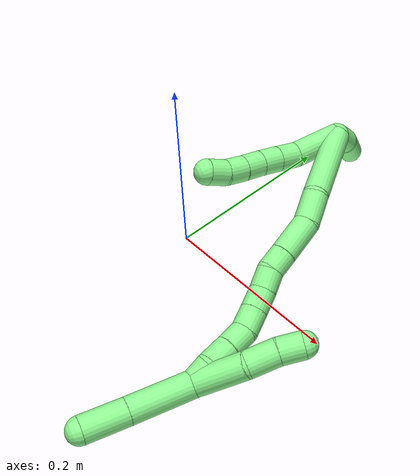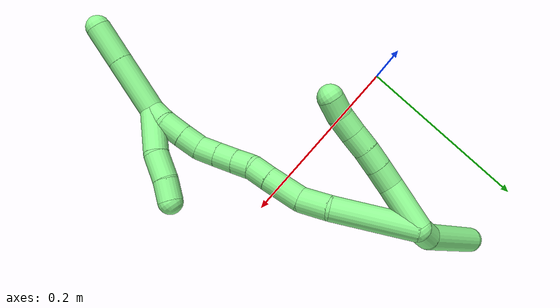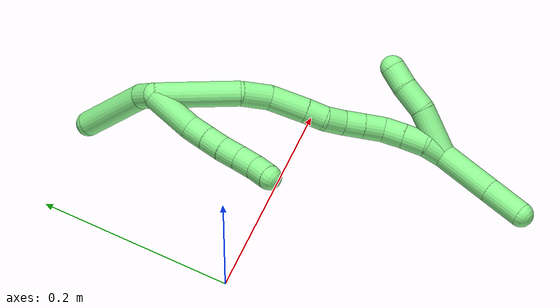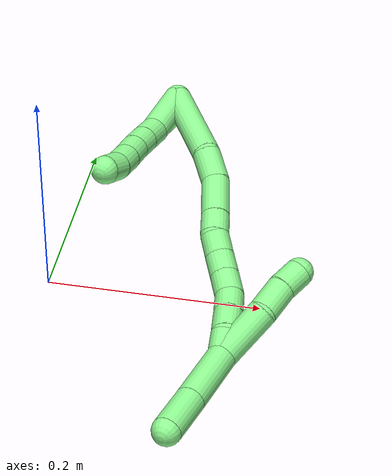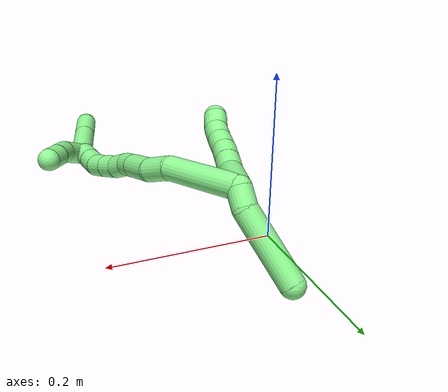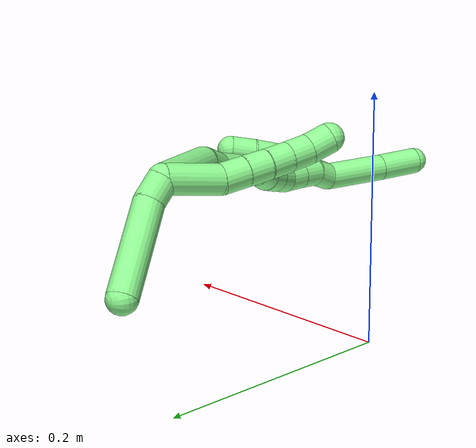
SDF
<sdf version="1.7">
 <world name="default">
  <model name="13">
   <static>0</static>
   <link name="13">
    <collision name="collision-cylinder-e_1_2_8">
     <pose>-0.003605 -0.001942 0.023631 0.081981 -0.150899 -0.006201</pose>
     <geometry><cylinder><radius>0.0125</radius><length>0.047967</length></cylinder></geometry>
     <surface>
      <friction><ode><mu>1.16</mu><mu2>1.16</mu2><slip1>0</slip1><slip2>0</slip2></ode></friction>
      <contact><ode><kp>1e+06</kp><kd>1</kd><max_vel>0</max_vel><min_depth>0.001</min_depth></ode></contact>
     </surface>
    </collision>
    <visual name="visual-cylinder-e_1_2_8">
     <pose>-0.003605 -0.001942 0.023631 0.081981 -0.150899 -0.006201</pose>
     <geometry><cylinder><radius>0.0125</radius><length>0.047967</length></cylinder></geometry>
     <material><ambient>0.564706 0.984314 0.572549 1</ambient></material>
    </visual>
    <collision name="collision-cylinder-e_2_8_9">
     <pose>-0.006032 -0.003118 0.058167 -0.070072 0.107391 -0.003768</pose>
     <geometry><cylinder><radius>0.0125</radius><length>0.021989</length></cylinder></geometry>
     <surface>
      <friction><ode><mu>1.16</mu><mu2>1.16</mu2><slip1>0</slip1><slip2>0</slip2></ode></friction>
      <contact><ode><kp>1e+06</kp><kd>1</kd><max_vel>0</max_vel><min_depth>0.001</min_depth></ode></contact>
     </surface>
    </collision>
    <visual name="visual-cylinder-e_2_8_9">
     <pose>-0.006032 -0.003118 0.058167 -0.070072 0.107391 -0.003768</pose>
     <geometry><cylinder><radius>0.0125</radius><length>0.021989</length></cylinder></geometry>
     <material><ambient>0.564706 0.984314 0.572549 1</ambient></material>
    </visual>
    <collision name="collision-cylinder-e_3_9_10">
     <pose>-0.003793 -0.001836 0.079007 -0.051925 0.106208 -0.002761</pose>
     <geometry><cylinder><radius>0.0125</radius><length>0.020011</length></cylinder></geometry>
     <surface>
      <friction><ode><mu>1.16</mu><mu2>1.16</mu2><slip1>0</slip1><slip2>0</slip2></ode></friction>
      <contact><ode><kp>1e+06</kp><kd>1</kd><max_vel>0</max_vel><min_depth>0.001</min_depth></ode></contact>
     </surface>
    </collision>
    <visual name="visual-cylinder-e_3_9_10">
     <pose>-0.003793 -0.001836 0.079007 -0.051925 0.106208 -0.002761</pose>
     <geometry><cylinder><radius>0.0125</radius><length>0.020011</length></cylinder></geometry>
     <material><ambient>0.564706 0.984314 0.572549 1</ambient></material>
    </visual>
    <collision name="collision-cylinder-e_4_10_11">
     <pose>-0.001238 -0.001308 0.098841 -0.001214 0.149859 -9.1e-05</pose>
     <geometry><cylinder><radius>0.0125</radius><length>0.02002</length></cylinder></geometry>
     <surface>
      <friction><ode><mu>1.16</mu><mu2>1.16</mu2><slip1>0</slip1><slip2>0</slip2></ode></friction>
      <contact><ode><kp>1e+06</kp><kd>1</kd><max_vel>0</max_vel><min_depth>0.001</min_depth></ode></contact>
     </surface>
    </collision>
    <visual name="visual-cylinder-e_4_10_11">
     <pose>-0.001238 -0.001308 0.098841 -0.001214 0.149859 -9.1e-05</pose>
     <geometry><cylinder><radius>0.0125</radius><length>0.02002</length></cylinder></geometry>
     <material><ambient>0.564706 0.984314 0.572549 1</ambient></material>
    </visual>
    <collision name="collision-cylinder-e_5_11_12">
     <pose>0.001839 -0.000788 0.118602 -0.051485 0.158876 -0.004099</pose>
     <geometry><cylinder><radius>0.0125</radius><length>0.020003</length></cylinder></geometry>
     <surface>
      <friction><ode><mu>1.16</mu><mu2>1.16</mu2><slip1>0</slip1><slip2>0</slip2></ode></friction>
      <contact><ode><kp>1e+06</kp><kd>1</kd><max_vel>0</max_vel><min_depth>0.001</min_depth></ode></contact>
     </surface>
    </collision>
    <visual name="visual-cylinder-e_5_11_12">
     <pose>0.001839 -0.000788 0.118602 -0.051485 0.158876 -0.004099</pose>
     <geometry><cylinder><radius>0.0125</radius><length>0.020003</length></cylinder></geometry>
     <material><ambient>0.564706 0.984314 0.572549 1</ambient></material>
    </visual>
    <collision name="collision-cylinder-e_6_12_6">
     <pose>0.005625 0.002423 0.137841 -0.280583 0.222062 -0.031486</pose>
     <geometry><cylinder><radius>0.0125</radius><length>0.020009</length></cylinder></geometry>
     <surface>
      <friction><ode><mu>1.16</mu><mu2>1.16</mu2><slip1>0</slip1><slip2>0</slip2></ode></friction>
      <contact><ode><kp>1e+06</kp><kd>1</kd><max_vel>0</max_vel><min_depth>0.001</min_depth></ode></contact>
     </surface>
    </collision>
    <visual name="visual-cylinder-e_6_12_6">
     <pose>0.005625 0.002423 0.137841 -0.280583 0.222062 -0.031486</pose>
     <geometry><cylinder><radius>0.0125</radius><length>0.020009</length></cylinder></geometry>
     <material><ambient>0.564706 0.984314 0.572549 1</ambient></material>
    </visual>
    <collision name="collision-cylinder-e_1_2_13">
     <pose>-0.007009 -0.002719 -0.007126 2.77708 -0.74323 -2.25812</pose>
     <geometry><cylinder><radius>0.0125</radius><length>0.020717</length></cylinder></geometry>
     <surface>
      <friction><ode><mu>1.16</mu><mu2>1.16</mu2><slip1>0</slip1><slip2>0</slip2></ode></friction>
      <contact><ode><kp>1e+06</kp><kd>1</kd><max_vel>0</max_vel><min_depth>0.001</min_depth></ode></contact>
     </surface>
    </collision>
    <visual name="visual-cylinder-e_1_2_13">
     <pose>-0.007009 -0.002719 -0.007126 2.77708 -0.74323 -2.25812</pose>
     <geometry><cylinder><radius>0.0125</radius><length>0.020717</length></cylinder></geometry>
     <material><ambient>0.564706 0.984314 0.572549 1</ambient></material>
    </visual>
    <collision name="collision-cylinder-e_2_13_5">
     <pose>-0.047661 -0.006454 -0.035194 3.09309 -1.01347 -3.05426</pose>
     <geometry><cylinder><radius>0.0125</radius><length>0.079283</length></cylinder></geometry>
     <surface>
      <friction><ode><mu>1.16</mu><mu2>1.16</mu2><slip1>0</slip1><slip2>0</slip2></ode></friction>
      <contact><ode><kp>1e+06</kp><kd>1</kd><max_vel>0</max_vel><min_depth>0.001</min_depth></ode></contact>
     </surface>
    </collision>
    <visual name="visual-cylinder-e_2_13_5">
     <pose>-0.047661 -0.006454 -0.035194 3.09309 -1.01347 -3.05426</pose>
     <geometry><cylinder><radius>0.0125</radius><length>0.079283</length></cylinder></geometry>
     <material><ambient>0.564706 0.984314 0.572549 1</ambient></material>
    </visual>
    <collision name="collision-cylinder-e_1_2_14">
     <pose>0.013483 -0.02581 0.030833 0.696944 0.323529 0.118435</pose>
     <geometry><cylinder><radius>0.0125</radius><length>0.084821</length></cylinder></geometry>
     <surface>
      <friction><ode><mu>1.16</mu><mu2>1.16</mu2><slip1>0</slip1><slip2>0</slip2></ode></friction>
      <contact><ode><kp>1e+06</kp><kd>1</kd><max_vel>0</max_vel><min_depth>0.001</min_depth></ode></contact>
     </surface>
    </collision>
    <visual name="visual-cylinder-e_1_2_14">
     <pose>0.013483 -0.02581 0.030833 0.696944 0.323529 0.118435</pose>
     <geometry><cylinder><radius>0.0125</radius><length>0.084821</length></cylinder></geometry>
     <material><ambient>0.564706 0.984314 0.572549 1</ambient></material>
    </visual>
    <collision name="collision-cylinder-e_2_14_15">
     <pose>0.027655 -0.062621 0.072092 0.812245 0.045428 0.019538</pose>
     <geometry><cylinder><radius>0.0125</radius><length>0.030344</length></cylinder></geometry>
     <surface>
      <friction><ode><mu>1.16</mu><mu2>1.16</mu2><slip1>0</slip1><slip2>0</slip2></ode></friction>
      <contact><ode><kp>1e+06</kp><kd>1</kd><max_vel>0</max_vel><min_depth>0.001</min_depth></ode></contact>
     </surface>
    </collision>
    <visual name="visual-cylinder-e_2_14_15">
     <pose>0.027655 -0.062621 0.072092 0.812245 0.045428 0.019538</pose>
     <geometry><cylinder><radius>0.0125</radius><length>0.030344</length></cylinder></geometry>
     <material><ambient>0.564706 0.984314 0.572549 1</ambient></material>
    </visual>
    <collision name="collision-cylinder-e_3_15_16">
     <pose>0.028291 -0.082903 0.099097 0.510366 -0.002751 -0.000718</pose>
     <geometry><cylinder><radius>0.0125</radius><length>0.038001</length></cylinder></geometry>
     <surface>
      <friction><ode><mu>1.16</mu><mu2>1.16</mu2><slip1>0</slip1><slip2>0</slip2></ode></friction>
      <contact><ode><kp>1e+06</kp><kd>1</kd><max_vel>0</max_vel><min_depth>0.001</min_depth></ode></contact>
     </surface>
    </collision>
    <visual name="visual-cylinder-e_3_15_16">
     <pose>0.028291 -0.082903 0.099097 0.510366 -0.002751 -0.000718</pose>
     <geometry><cylinder><radius>0.0125</radius><length>0.038001</length></cylinder></geometry>
     <material><ambient>0.564706 0.984314 0.572549 1</ambient></material>
    </visual>
    <collision name="collision-cylinder-e_4_16_17">
     <pose>0.027773 -0.097045 0.124515 0.502727 -0.046205 -0.011867</pose>
     <geometry><cylinder><radius>0.0125</radius><length>0.020195</length></cylinder></geometry>
     <surface>
      <friction><ode><mu>1.16</mu><mu2>1.16</mu2><slip1>0</slip1><slip2>0</slip2></ode></friction>
      <contact><ode><kp>1e+06</kp><kd>1</kd><max_vel>0</max_vel><min_depth>0.001</min_depth></ode></contact>
     </surface>
    </collision>
    <visual name="visual-cylinder-e_4_16_17">
     <pose>0.027773 -0.097045 0.124515 0.502727 -0.046205 -0.011867</pose>
     <geometry><cylinder><radius>0.0125</radius><length>0.020195</length></cylinder></geometry>
     <material><ambient>0.564706 0.984314 0.572549 1</ambient></material>
    </visual>
    <collision name="collision-cylinder-e_5_17_18">
     <pose>0.026754 -0.109224 0.140279 0.812999 -0.05477 -0.023582</pose>
     <geometry><cylinder><radius>0.0125</radius><length>0.020183</length></cylinder></geometry>
     <surface>
      <friction><ode><mu>1.16</mu><mu2>1.16</mu2><slip1>0</slip1><slip2>0</slip2></ode></friction>
      <contact><ode><kp>1e+06</kp><kd>1</kd><max_vel>0</max_vel><min_depth>0.001</min_depth></ode></contact>
     </surface>
    </collision>
    <visual name="visual-cylinder-e_5_17_18">
     <pose>0.026754 -0.109224 0.140279 0.812999 -0.05477 -0.023582</pose>
     <geometry><cylinder><radius>0.0125</radius><length>0.020183</length></cylinder></geometry>
     <material><ambient>0.564706 0.984314 0.572549 1</ambient></material>
    </visual>
    <collision name="collision-cylinder-e_6_18_19">
     <pose>0.027101 -0.123228 0.155067 0.704678 0.086915 0.031974</pose>
     <geometry><cylinder><radius>0.0125</radius><length>0.020719</length></cylinder></geometry>
     <surface>
      <friction><ode><mu>1.16</mu><mu2>1.16</mu2><slip1>0</slip1><slip2>0</slip2></ode></friction>
      <contact><ode><kp>1e+06</kp><kd>1</kd><max_vel>0</max_vel><min_depth>0.001</min_depth></ode></contact>
     </surface>
    </collision>
    <visual name="visual-cylinder-e_6_18_19">
     <pose>0.027101 -0.123228 0.155067 0.704678 0.086915 0.031974</pose>
     <geometry><cylinder><radius>0.0125</radius><length>0.020719</length></cylinder></geometry>
     <material><ambient>0.564706 0.984314 0.572549 1</ambient></material>
    </visual>
    <collision name="collision-cylinder-e_7_19_20">
     <pose>0.028999 -0.136566 0.171065 0.685458 0.094738 0.033826</pose>
     <geometry><cylinder><radius>0.0125</radius><length>0.021114</length></cylinder></geometry>
     <surface>
      <friction><ode><mu>1.16</mu><mu2>1.16</mu2><slip1>0</slip1><slip2>0</slip2></ode></friction>
      <contact><ode><kp>1e+06</kp><kd>1</kd><max_vel>0</max_vel><min_depth>0.001</min_depth></ode></contact>
     </surface>
    </collision>
    <visual name="visual-cylinder-e_7_19_20">
     <pose>0.028999 -0.136566 0.171065 0.685458 0.094738 0.033826</pose>
     <geometry><cylinder><radius>0.0125</radius><length>0.021114</length></cylinder></geometry>
     <material><ambient>0.564706 0.984314 0.572549 1</ambient></material>
    </visual>
    <collision name="collision-cylinder-e_8_20_21">
     <pose>0.031543 -0.1468 0.189215 0.343425 0.144296 0.025066</pose>
     <geometry><cylinder><radius>0.0125</radius><length>0.021493</length></cylinder></geometry>
     <surface>
      <friction><ode><mu>1.16</mu><mu2>1.16</mu2><slip1>0</slip1><slip2>0</slip2></ode></friction>
      <contact><ode><kp>1e+06</kp><kd>1</kd><max_vel>0</max_vel><min_depth>0.001</min_depth></ode></contact>
     </surface>
    </collision>
    <visual name="visual-cylinder-e_8_20_21">
     <pose>0.031543 -0.1468 0.189215 0.343425 0.144296 0.025066</pose>
     <geometry><cylinder><radius>0.0125</radius><length>0.021493</length></cylinder></geometry>
     <material><ambient>0.564706 0.984314 0.572549 1</ambient></material>
    </visual>
    <collision name="collision-cylinder-e_9_21_22">
     <pose>0.034368 -0.154092 0.21006 0.330095 0.111322 0.018561</pose>
     <geometry><cylinder><radius>0.0125</radius><length>0.023041</length></cylinder></geometry>
     <surface>
      <friction><ode><mu>1.16</mu><mu2>1.16</mu2><slip1>0</slip1><slip2>0</slip2></ode></friction>
      <contact><ode><kp>1e+06</kp><kd>1</kd><max_vel>0</max_vel><min_depth>0.001</min_depth></ode></contact>
     </surface>
    </collision>
    <visual name="visual-cylinder-e_9_21_22">
     <pose>0.034368 -0.154092 0.21006 0.330095 0.111322 0.018561</pose>
     <geometry><cylinder><radius>0.0125</radius><length>0.023041</length></cylinder></geometry>
     <material><ambient>0.564706 0.984314 0.572549 1</ambient></material>
    </visual>
    <collision name="collision-cylinder-e_10_22_1">
     <pose>0.033714 -0.162242 0.229692 0.467122 -0.193705 -0.046219</pose>
     <geometry><cylinder><radius>0.0125</radius><length>0.02009</length></cylinder></geometry>
     <surface>
      <friction><ode><mu>1.16</mu><mu2>1.16</mu2><slip1>0</slip1><slip2>0</slip2></ode></friction>
      <contact><ode><kp>1e+06</kp><kd>1</kd><max_vel>0</max_vel><min_depth>0.001</min_depth></ode></contact>
     </surface>
    </collision>
    <visual name="visual-cylinder-e_10_22_1">
     <pose>0.033714 -0.162242 0.229692 0.467122 -0.193705 -0.046219</pose>
     <geometry><cylinder><radius>0.0125</radius><length>0.02009</length></cylinder></geometry>
     <material><ambient>0.564706 0.984314 0.572549 1</ambient></material>
    </visual>
    <collision name="collision-cylinder-e_1_1_23">
     <pose>0.04591 -0.167296 0.218204 3.11125 0.608108 3.04497</pose>
     <geometry><cylinder><radius>0.0125</radius><length>0.049464</length></cylinder></geometry>
     <surface>
      <friction><ode><mu>1.16</mu><mu2>1.16</mu2><slip1>0</slip1><slip2>0</slip2></ode></friction>
      <contact><ode><kp>1e+06</kp><kd>1</kd><max_vel>0</max_vel><min_depth>0.001</min_depth></ode></contact>
     </surface>
    </collision>
    <visual name="visual-cylinder-e_1_1_23">
     <pose>0.04591 -0.167296 0.218204 3.11125 0.608108 3.04497</pose>
     <geometry><cylinder><radius>0.0125</radius><length>0.049464</length></cylinder></geometry>
     <material><ambient>0.564706 0.984314 0.572549 1</ambient></material>
    </visual>
    <collision name="collision-cylinder-e_2_23_24">
     <pose>0.064829 -0.167687 0.184586 -3.12469 0.344874 -3.0446</pose>
     <geometry><cylinder><radius>0.0125</radius><length>0.02833</length></cylinder></geometry>
     <surface>
      <friction><ode><mu>1.16</mu><mu2>1.16</mu2><slip1>0</slip1><slip2>0</slip2></ode></friction>
      <contact><ode><kp>1e+06</kp><kd>1</kd><max_vel>0</max_vel><min_depth>0.001</min_depth></ode></contact>
     </surface>
    </collision>
    <visual name="visual-cylinder-e_2_23_24">
     <pose>0.064829 -0.167687 0.184586 -3.12469 0.344874 -3.0446</pose>
     <geometry><cylinder><radius>0.0125</radius><length>0.02833</length></cylinder></geometry>
     <material><ambient>0.564706 0.984314 0.572549 1</ambient></material>
    </visual>
    <collision name="collision-cylinder-e_3_24_4">
     <pose>0.073599 -0.168934 0.160997 2.99904 0.366712 2.40653</pose>
     <geometry><cylinder><radius>0.0125</radius><length>0.022206</length></cylinder></geometry>
     <surface>
      <friction><ode><mu>1.16</mu><mu2>1.16</mu2><slip1>0</slip1><slip2>0</slip2></ode></friction>
      <contact><ode><kp>1e+06</kp><kd>1</kd><max_vel>0</max_vel><min_depth>0.001</min_depth></ode></contact>
     </surface>
    </collision>
    <visual name="visual-cylinder-e_3_24_4">
     <pose>0.073599 -0.168934 0.160997 2.99904 0.366712 2.40653</pose>
     <geometry><cylinder><radius>0.0125</radius><length>0.022206</length></cylinder></geometry>
     <material><ambient>0.564706 0.984314 0.572549 1</ambient></material>
    </visual>
    <collision name="collision-cylinder-e_1_1_25">
     <pose>0.031208 -0.166221 0.268386 -0.015381 -0.019159 0.000147</pose>
     <geometry><cylinder><radius>0.0125</radius><length>0.059804</length></cylinder></geometry>
     <surface>
      <friction><ode><mu>1.16</mu><mu2>1.16</mu2><slip1>0</slip1><slip2>0</slip2></ode></friction>
      <contact><ode><kp>1e+06</kp><kd>1</kd><max_vel>0</max_vel><min_depth>0.001</min_depth></ode></contact>
     </surface>
    </collision>
    <visual name="visual-cylinder-e_1_1_25">
     <pose>0.031208 -0.166221 0.268386 -0.015381 -0.019159 0.000147</pose>
     <geometry><cylinder><radius>0.0125</radius><length>0.059804</length></cylinder></geometry>
     <material><ambient>0.564706 0.984314 0.572549 1</ambient></material>
    </visual>
    <collision name="collision-cylinder-e_2_25_3">
     <pose>0.030573 -0.165098 0.318366 -0.032985 -0.00305 5e-05</pose>
     <geometry><cylinder><radius>0.0125</radius><length>0.040196</length></cylinder></geometry>
     <surface>
      <friction><ode><mu>1.16</mu><mu2>1.16</mu2><slip1>0</slip1><slip2>0</slip2></ode></friction>
      <contact><ode><kp>1e+06</kp><kd>1</kd><max_vel>0</max_vel><min_depth>0.001</min_depth></ode></contact>
     </surface>
    </collision>
    <visual name="visual-cylinder-e_2_25_3">
     <pose>0.030573 -0.165098 0.318366 -0.032985 -0.00305 5e-05</pose>
     <geometry><cylinder><radius>0.0125</radius><length>0.040196</length></cylinder></geometry>
     <material><ambient>0.564706 0.984314 0.572549 1</ambient></material>
    </visual>
    <collision name="collision-sphere-3">
     <pose>0.030512 -0.164435 0.338453 0 -0 0</pose>
     <geometry><sphere><radius>0.0125</radius></sphere></geometry>
     <surface>
      <friction><ode><mu>1.16</mu><mu2>1.16</mu2><slip1>0</slip1><slip2>0</slip2></ode></friction>
      <contact><ode><kp>1e+06</kp><kd>1</kd><max_vel>0</max_vel><min_depth>0.001</min_depth></ode></contact>
     </surface>
    </collision>
    <visual name="visual-sphere-3">
     <pose>0.030512 -0.164435 0.338453 0 -0 0</pose>
     <geometry><sphere><radius>0.0125</radius></sphere></geometry>
     <material><ambient>0.564706 0.984314 0.572549 1</ambient></material>
    </visual>
    <collision name="collision-sphere-25">
     <pose>0.030635 -0.165761 0.298279 0 -0 0</pose>
     <geometry><sphere><radius>0.0125</radius></sphere></geometry>
     <surface>
      <friction><ode><mu>1.16</mu><mu2>1.16</mu2><slip1>0</slip1><slip2>0</slip2></ode></friction>
      <contact><ode><kp>1e+06</kp><kd>1</kd><max_vel>0</max_vel><min_depth>0.001</min_depth></ode></contact>
     </surface>
    </collision>
    <visual name="visual-sphere-25">
     <pose>0.030635 -0.165761 0.298279 0 -0 0</pose>
     <geometry><sphere><radius>0.0125</radius></sphere></geometry>
     <material><ambient>0.564706 0.984314 0.572549 1</ambient></material>
    </visual>
    <collision name="collision-sphere-4">
     <pose>0.07758 -0.170407 0.150738 0 -0 0</pose>
     <geometry><sphere><radius>0.0125</radius></sphere></geometry>
     <surface>
      <friction><ode><mu>1.16</mu><mu2>1.16</mu2><slip1>0</slip1><slip2>0</slip2></ode></friction>
      <contact><ode><kp>1e+06</kp><kd>1</kd><max_vel>0</max_vel><min_depth>0.001</min_depth></ode></contact>
     </surface>
    </collision>
    <visual name="visual-sphere-4">
     <pose>0.07758 -0.170407 0.150738 0 -0 0</pose>
     <geometry><sphere><radius>0.0125</radius></sphere></geometry>
     <material><ambient>0.564706 0.984314 0.572549 1</ambient></material>
    </visual>
    <collision name="collision-sphere-24">
     <pose>0.069618 -0.167461 0.171257 0 -0 0</pose>
     <geometry><sphere><radius>0.0125</radius></sphere></geometry>
     <surface>
      <friction><ode><mu>1.16</mu><mu2>1.16</mu2><slip1>0</slip1><slip2>0</slip2></ode></friction>
      <contact><ode><kp>1e+06</kp><kd>1</kd><max_vel>0</max_vel><min_depth>0.001</min_depth></ode></contact>
     </surface>
    </collision>
    <visual name="visual-sphere-24">
     <pose>0.069618 -0.167461 0.171257 0 -0 0</pose>
     <geometry><sphere><radius>0.0125</radius></sphere></geometry>
     <material><ambient>0.564706 0.984314 0.572549 1</ambient></material>
    </visual>
    <collision name="collision-sphere-23">
     <pose>0.06004 -0.167912 0.197915 0 -0 0</pose>
     <geometry><sphere><radius>0.0125</radius></sphere></geometry>
     <surface>
      <friction><ode><mu>1.16</mu><mu2>1.16</mu2><slip1>0</slip1><slip2>0</slip2></ode></friction>
      <contact><ode><kp>1e+06</kp><kd>1</kd><max_vel>0</max_vel><min_depth>0.001</min_depth></ode></contact>
     </surface>
    </collision>
    <visual name="visual-sphere-23">
     <pose>0.06004 -0.167912 0.197915 0 -0 0</pose>
     <geometry><sphere><radius>0.0125</radius></sphere></geometry>
     <material><ambient>0.564706 0.984314 0.572549 1</ambient></material>
    </visual>
    <collision name="collision-sphere-1">
     <pose>0.03178 -0.166681 0.238493 0 -0 0</pose>
     <geometry><sphere><radius>0.0125</radius></sphere></geometry>
     <surface>
      <friction><ode><mu>1.16</mu><mu2>1.16</mu2><slip1>0</slip1><slip2>0</slip2></ode></friction>
      <contact><ode><kp>1e+06</kp><kd>1</kd><max_vel>0</max_vel><min_depth>0.001</min_depth></ode></contact>
     </surface>
    </collision>
    <visual name="visual-sphere-1">
     <pose>0.03178 -0.166681 0.238493 0 -0 0</pose>
     <geometry><sphere><radius>0.0125</radius></sphere></geometry>
     <material><ambient>0.564706 0.984314 0.572549 1</ambient></material>
    </visual>
    <collision name="collision-sphere-22">
     <pose>0.035648 -0.157803 0.220891 0 -0 0</pose>
     <geometry><sphere><radius>0.0125</radius></sphere></geometry>
     <surface>
      <friction><ode><mu>1.16</mu><mu2>1.16</mu2><slip1>0</slip1><slip2>0</slip2></ode></friction>
      <contact><ode><kp>1e+06</kp><kd>1</kd><max_vel>0</max_vel><min_depth>0.001</min_depth></ode></contact>
     </surface>
    </collision>
    <visual name="visual-sphere-22">
     <pose>0.035648 -0.157803 0.220891 0 -0 0</pose>
     <geometry><sphere><radius>0.0125</radius></sphere></geometry>
     <material><ambient>0.564706 0.984314 0.572549 1</ambient></material>
    </visual>
    <collision name="collision-sphere-21">
     <pose>0.033088 -0.150381 0.199229 0 -0 0</pose>
     <geometry><sphere><radius>0.0125</radius></sphere></geometry>
     <surface>
      <friction><ode><mu>1.16</mu><mu2>1.16</mu2><slip1>0</slip1><slip2>0</slip2></ode></friction>
      <contact><ode><kp>1e+06</kp><kd>1</kd><max_vel>0</max_vel><min_depth>0.001</min_depth></ode></contact>
     </surface>
    </collision>
    <visual name="visual-sphere-21">
     <pose>0.033088 -0.150381 0.199229 0 -0 0</pose>
     <geometry><sphere><radius>0.0125</radius></sphere></geometry>
     <material><ambient>0.564706 0.984314 0.572549 1</ambient></material>
    </visual>
    <collision name="collision-sphere-12">
     <pose>0.003421 -0.000279 0.128464 0 -0 0</pose>
     <geometry><sphere><radius>0.0125</radius></sphere></geometry>
     <surface>
      <friction><ode><mu>1.16</mu><mu2>1.16</mu2><slip1>0</slip1><slip2>0</slip2></ode></friction>
      <contact><ode><kp>1e+06</kp><kd>1</kd><max_vel>0</max_vel><min_depth>0.001</min_depth></ode></contact>
     </surface>
    </collision>
    <visual name="visual-sphere-12">
     <pose>0.003421 -0.000279 0.128464 0 -0 0</pose>
     <geometry><sphere><radius>0.0125</radius></sphere></geometry>
     <material><ambient>0.564706 0.984314 0.572549 1</ambient></material>
    </visual>
    <collision name="collision-sphere-11">
     <pose>0.000257 -0.001296 0.108739 0 -0 0</pose>
     <geometry><sphere><radius>0.0125</radius></sphere></geometry>
     <surface>
      <friction><ode><mu>1.16</mu><mu2>1.16</mu2><slip1>0</slip1><slip2>0</slip2></ode></friction>
      <contact><ode><kp>1e+06</kp><kd>1</kd><max_vel>0</max_vel><min_depth>0.001</min_depth></ode></contact>
     </surface>
    </collision>
    <visual name="visual-sphere-11">
     <pose>0.000257 -0.001296 0.108739 0 -0 0</pose>
     <geometry><sphere><radius>0.0125</radius></sphere></geometry>
     <material><ambient>0.564706 0.984314 0.572549 1</ambient></material>
    </visual>
    <collision name="collision-sphere-10">
     <pose>-0.002732 -0.00132 0.088943 0 -0 0</pose>
     <geometry><sphere><radius>0.0125</radius></sphere></geometry>
     <surface>
      <friction><ode><mu>1.16</mu><mu2>1.16</mu2><slip1>0</slip1><slip2>0</slip2></ode></friction>
      <contact><ode><kp>1e+06</kp><kd>1</kd><max_vel>0</max_vel><min_depth>0.001</min_depth></ode></contact>
     </surface>
    </collision>
    <visual name="visual-sphere-10">
     <pose>-0.002732 -0.00132 0.088943 0 -0 0</pose>
     <geometry><sphere><radius>0.0125</radius></sphere></geometry>
     <material><ambient>0.564706 0.984314 0.572549 1</ambient></material>
    </visual>
    <collision name="collision-sphere-9">
     <pose>-0.004854 -0.002353 0.069071 0 -0 0</pose>
     <geometry><sphere><radius>0.0125</radius></sphere></geometry>
     <surface>
      <friction><ode><mu>1.16</mu><mu2>1.16</mu2><slip1>0</slip1><slip2>0</slip2></ode></friction>
      <contact><ode><kp>1e+06</kp><kd>1</kd><max_vel>0</max_vel><min_depth>0.001</min_depth></ode></contact>
     </surface>
    </collision>
    <visual name="visual-sphere-9">
     <pose>-0.004854 -0.002353 0.069071 0 -0 0</pose>
     <geometry><sphere><radius>0.0125</radius></sphere></geometry>
     <material><ambient>0.564706 0.984314 0.572549 1</ambient></material>
    </visual>
    <collision name="collision-sphere-2">
     <geometry><sphere><radius>0.0125</radius></sphere></geometry>
     <surface>
      <friction><ode><mu>1.16</mu><mu2>1.16</mu2><slip1>0</slip1><slip2>0</slip2></ode></friction>
      <contact><ode><kp>1e+06</kp><kd>1</kd><max_vel>0</max_vel><min_depth>0.001</min_depth></ode></contact>
     </surface>
    </collision>
    <visual name="visual-sphere-2">
     <geometry><sphere><radius>0.0125</radius></sphere></geometry>
     <material><ambient>0.564706 0.984314 0.572549 1</ambient></material>
    </visual>
    <collision name="collision-sphere-19">
     <pose>0.028 -0.129913 0.162929 0 -0 0</pose>
     <geometry><sphere><radius>0.0125</radius></sphere></geometry>
     <surface>
      <friction><ode><mu>1.16</mu><mu2>1.16</mu2><slip1>0</slip1><slip2>0</slip2></ode></friction>
      <contact><ode><kp>1e+06</kp><kd>1</kd><max_vel>0</max_vel><min_depth>0.001</min_depth></ode></contact>
     </surface>
    </collision>
    <visual name="visual-sphere-19">
     <pose>0.028 -0.129913 0.162929 0 -0 0</pose>
     <geometry><sphere><radius>0.0125</radius></sphere></geometry>
     <material><ambient>0.564706 0.984314 0.572549 1</ambient></material>
    </visual>
    <collision name="collision-sphere-8">
     <pose>-0.007211 -0.003883 0.047263 0 -0 0</pose>
     <geometry><sphere><radius>0.0125</radius></sphere></geometry>
     <surface>
      <friction><ode><mu>1.16</mu><mu2>1.16</mu2><slip1>0</slip1><slip2>0</slip2></ode></friction>
      <contact><ode><kp>1e+06</kp><kd>1</kd><max_vel>0</max_vel><min_depth>0.001</min_depth></ode></contact>
     </surface>
    </collision>
    <visual name="visual-sphere-8">
     <pose>-0.007211 -0.003883 0.047263 0 -0 0</pose>
     <geometry><sphere><radius>0.0125</radius></sphere></geometry>
     <material><ambient>0.564706 0.984314 0.572549 1</ambient></material>
    </visual>
    <collision name="collision-sphere-6">
     <pose>0.007828 0.005125 0.147219 0 -0 0</pose>
     <geometry><sphere><radius>0.0125</radius></sphere></geometry>
     <surface>
      <friction><ode><mu>1.16</mu><mu2>1.16</mu2><slip1>0</slip1><slip2>0</slip2></ode></friction>
      <contact><ode><kp>1e+06</kp><kd>1</kd><max_vel>0</max_vel><min_depth>0.001</min_depth></ode></contact>
     </surface>
    </collision>
    <visual name="visual-sphere-6">
     <pose>0.007828 0.005125 0.147219 0 -0 0</pose>
     <geometry><sphere><radius>0.0125</radius></sphere></geometry>
     <material><ambient>0.564706 0.984314 0.572549 1</ambient></material>
    </visual>
    <collision name="collision-sphere-13">
     <pose>-0.014018 -0.005438 -0.014251 0 -0 0</pose>
     <geometry><sphere><radius>0.0125</radius></sphere></geometry>
     <surface>
      <friction><ode><mu>1.16</mu><mu2>1.16</mu2><slip1>0</slip1><slip2>0</slip2></ode></friction>
      <contact><ode><kp>1e+06</kp><kd>1</kd><max_vel>0</max_vel><min_depth>0.001</min_depth></ode></contact>
     </surface>
    </collision>
    <visual name="visual-sphere-13">
     <pose>-0.014018 -0.005438 -0.014251 0 -0 0</pose>
     <geometry><sphere><radius>0.0125</radius></sphere></geometry>
     <material><ambient>0.564706 0.984314 0.572549 1</ambient></material>
    </visual>
    <collision name="collision-sphere-5">
     <pose>-0.081304 -0.007471 -0.056136 0 -0 0</pose>
     <geometry><sphere><radius>0.0125</radius></sphere></geometry>
     <surface>
      <friction><ode><mu>1.16</mu><mu2>1.16</mu2><slip1>0</slip1><slip2>0</slip2></ode></friction>
      <contact><ode><kp>1e+06</kp><kd>1</kd><max_vel>0</max_vel><min_depth>0.001</min_depth></ode></contact>
     </surface>
    </collision>
    <visual name="visual-sphere-5">
     <pose>-0.081304 -0.007471 -0.056136 0 -0 0</pose>
     <geometry><sphere><radius>0.0125</radius></sphere></geometry>
     <material><ambient>0.564706 0.984314 0.572549 1</ambient></material>
    </visual>
    <collision name="collision-sphere-14">
     <pose>0.026966 -0.05162 0.061667 0 -0 0</pose>
     <geometry><sphere><radius>0.0125</radius></sphere></geometry>
     <surface>
      <friction><ode><mu>1.16</mu><mu2>1.16</mu2><slip1>0</slip1><slip2>0</slip2></ode></friction>
      <contact><ode><kp>1e+06</kp><kd>1</kd><max_vel>0</max_vel><min_depth>0.001</min_depth></ode></contact>
     </surface>
    </collision>
    <visual name="visual-sphere-14">
     <pose>0.026966 -0.05162 0.061667 0 -0 0</pose>
     <geometry><sphere><radius>0.0125</radius></sphere></geometry>
     <material><ambient>0.564706 0.984314 0.572549 1</ambient></material>
    </visual>
    <collision name="collision-sphere-15">
     <pose>0.028344 -0.073621 0.082518 0 -0 0</pose>
     <geometry><sphere><radius>0.0125</radius></sphere></geometry>
     <surface>
      <friction><ode><mu>1.16</mu><mu2>1.16</mu2><slip1>0</slip1><slip2>0</slip2></ode></friction>
      <contact><ode><kp>1e+06</kp><kd>1</kd><max_vel>0</max_vel><min_depth>0.001</min_depth></ode></contact>
     </surface>
    </collision>
    <visual name="visual-sphere-15">
     <pose>0.028344 -0.073621 0.082518 0 -0 0</pose>
     <geometry><sphere><radius>0.0125</radius></sphere></geometry>
     <material><ambient>0.564706 0.984314 0.572549 1</ambient></material>
    </visual>
    <collision name="collision-sphere-16">
     <pose>0.028239 -0.092185 0.115676 0 -0 0</pose>
     <geometry><sphere><radius>0.0125</radius></sphere></geometry>
     <surface>
      <friction><ode><mu>1.16</mu><mu2>1.16</mu2><slip1>0</slip1><slip2>0</slip2></ode></friction>
      <contact><ode><kp>1e+06</kp><kd>1</kd><max_vel>0</max_vel><min_depth>0.001</min_depth></ode></contact>
     </surface>
    </collision>
    <visual name="visual-sphere-16">
     <pose>0.028239 -0.092185 0.115676 0 -0 0</pose>
     <geometry><sphere><radius>0.0125</radius></sphere></geometry>
     <material><ambient>0.564706 0.984314 0.572549 1</ambient></material>
    </visual>
    <collision name="collision-sphere-17">
     <pose>0.027306 -0.101905 0.133353 0 -0 0</pose>
     <geometry><sphere><radius>0.0125</radius></sphere></geometry>
     <surface>
      <friction><ode><mu>1.16</mu><mu2>1.16</mu2><slip1>0</slip1><slip2>0</slip2></ode></friction>
      <contact><ode><kp>1e+06</kp><kd>1</kd><max_vel>0</max_vel><min_depth>0.001</min_depth></ode></contact>
     </surface>
    </collision>
    <visual name="visual-sphere-17">
     <pose>0.027306 -0.101905 0.133353 0 -0 0</pose>
     <geometry><sphere><radius>0.0125</radius></sphere></geometry>
     <material><ambient>0.564706 0.984314 0.572549 1</ambient></material>
    </visual>
    <collision name="collision-sphere-18">
     <pose>0.026201 -0.116542 0.147205 0 -0 0</pose>
     <geometry><sphere><radius>0.0125</radius></sphere></geometry>
     <surface>
      <friction><ode><mu>1.16</mu><mu2>1.16</mu2><slip1>0</slip1><slip2>0</slip2></ode></friction>
      <contact><ode><kp>1e+06</kp><kd>1</kd><max_vel>0</max_vel><min_depth>0.001</min_depth></ode></contact>
     </surface>
    </collision>
    <visual name="visual-sphere-18">
     <pose>0.026201 -0.116542 0.147205 0 -0 0</pose>
     <geometry><sphere><radius>0.0125</radius></sphere></geometry>
     <material><ambient>0.564706 0.984314 0.572549 1</ambient></material>
    </visual>
    <collision name="collision-sphere-20">
     <pose>0.029997 -0.143219 0.179201 0 -0 0</pose>
     <geometry><sphere><radius>0.0125</radius></sphere></geometry>
     <surface>
      <friction><ode><mu>1.16</mu><mu2>1.16</mu2><slip1>0</slip1><slip2>0</slip2></ode></friction>
      <contact><ode><kp>1e+06</kp><kd>1</kd><max_vel>0</max_vel><min_depth>0.001</min_depth></ode></contact>
     </surface>
    </collision>
    <visual name="visual-sphere-20">
     <pose>0.029997 -0.143219 0.179201 0 -0 0</pose>
     <geometry><sphere><radius>0.0125</radius></sphere></geometry>
     <material><ambient>0.564706 0.984314 0.572549 1</ambient></material>
    </visual>
    <inertial>
     <pose>0.016181 -0.081226 0.121161 0 -0 0</pose>
     <mass>0.75</mass>
     <inertia><ixx>8.4e-05</ixx><ixy>0</ixy><ixz>0</ixz><iyy>0.000159</iyy><iyz>0</iyz><izz>8.6e-05</izz></inertia>
    </inertial>
   </link>
   <pose>0.099648 0.123861 0.137178 1.49139 -0.950873 -0.189388</pose>
  </model>
 </world>
</sdf>
